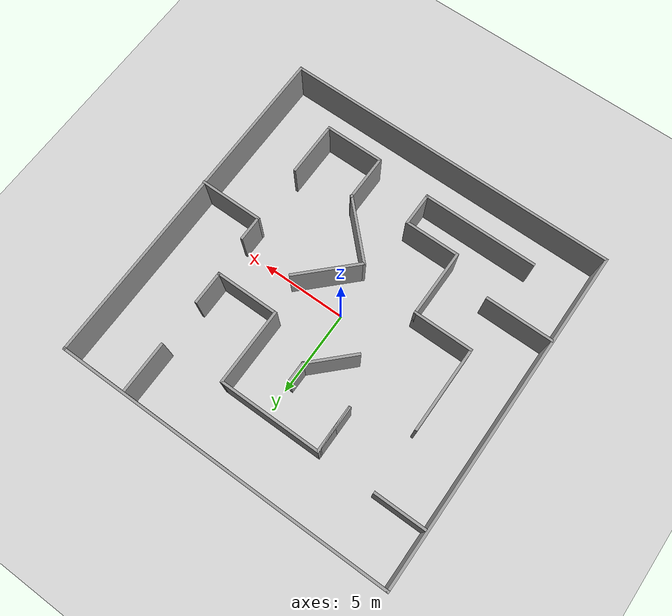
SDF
<sdf version="1.7">
 <world name="default">
  <physics type="ode">
   <ode>
    <solver>
     <type>quick</type>
     <iters>10</iters>
     <sor>1.3</sor>
     <use_dynamic_moi_rescaling>0</use_dynamic_moi_rescaling>
    </solver>
    <constraints>
     <cfm>0</cfm>
     <erp>0.2</erp>
     <contact_max_correcting_vel>100</contact_max_correcting_vel>
     <contact_surface_layer>0.001</contact_surface_layer>
    </constraints>
   </ode>
   <max_step_size>0.004</max_step_size>
   <real_time_factor>1</real_time_factor>
   <real_time_update_rate>250</real_time_update_rate>
  </physics>
  <light name="sun" type="directional">
   <cast_shadows>0</cast_shadows>
   <pose>0 0 100 0 -0 0</pose>
   <diffuse>0.8 0.8 0.8 1</diffuse>
   <specular>0.9 0.9 0.9 1</specular>
   <attenuation>
    <range>1000</range>
    <constant>0.9</constant>
    <linear>0.01</linear>
    <quadratic>0.001</quadratic>
   </attenuation>
   <direction>0.2 0.2 -0.9</direction>
   <spot><inner_angle>0</inner_angle><outer_angle>0</outer_angle><falloff>0</falloff></spot>
  </light>
  <model name="ground_plane">
   <static>1</static>
   <link name="link">
    <collision name="collision">
     <geometry><plane><normal>0 0 1</normal><size>100 100</size></plane></geometry>
     <surface><friction><ode><mu>100</mu><mu2>50</mu2></ode></friction></surface>
    </collision>
    <visual name="visual">
     <cast_shadows>0</cast_shadows>
     <geometry><plane><normal>0 0 1</normal><size>100 100</size></plane></geometry>
     <material>
      <script><uri>file://media/materials/scripts/gazebo.material</uri><name>Gazebo/Grey</name></script>
     </material>
    </visual>
   </link>
  </model>
  <gravity>0 0 -9.8066</gravity>
  <magnetic_field>6e-06 2.3e-05 -4.2e-05</magnetic_field>
  <atmosphere type="adiabatic"/>
  <scene><ambient>0.4 0.4 0.4 1</ambient><background>0.7 0.7 0.7 1</background><shadows>1</shadows></scene>
  <spherical_coordinates>
   <surface_model>EARTH_WGS84</surface_model>
   <latitude_deg>0</latitude_deg>
   <longitude_deg>0</longitude_deg>
   <elevation>0</elevation>
   <heading_deg>0</heading_deg>
  </spherical_coordinates>
  <model name="7.13.14.30">
   <pose>0.024632 0.045 0 0 -0 0</pose>
   <link name="Wall_0">
    <collision name="Wall_0_Collision">
     <geometry><box><size>19.75 0.15 2.5</size></box></geometry>
     <pose>0 0 1.25 0 -0 0</pose>
    </collision>
    <visual name="Wall_0_Visual">
     <pose>0 0 1.25 0 -0 0</pose>
     <geometry><box><size>19.75 0.15 2.5</size></box></geometry>
     <material>
      <script><uri>file://media/materials/scripts/gazebo.material</uri><name>Gazebo/Grey</name></script>
      <ambient>1 1 1 1</ambient>
     </material>
     <meta><layer>0</layer></meta>
    </visual>
    <pose>-0.014632 -9.925 0 0 -0 0</pose>
   </link>
   <link name="Wall_11">
    <collision name="Wall_11_Collision">
     <geometry><box><size>2.75 0.15 2.5</size></box></geometry>
     <pose>0 0 1.25 0 -0 0</pose>
    </collision>
    <visual name="Wall_11_Visual">
     <pose>0 0 1.25 0 -0 0</pose>
     <geometry><box><size>2.75 0.15 2.5</size></box></geometry>
     <material>
      <script><uri>file://media/materials/scripts/gazebo.material</uri><name>Gazebo/Grey</name></script>
      <ambient>1 1 1 1</ambient>
     </material>
     <meta><layer>0</layer></meta>
    </visual>
    <pose>-3.47586 5.36469 0 0 -0 -1.5708</pose>
   </link>
   <link name="Wall_12">
    <collision name="Wall_12_Collision">
     <geometry><box><size>2.5 0.15 2.5</size></box></geometry>
     <pose>0 0 1.25 0 -0 0</pose>
    </collision>
    <visual name="Wall_12_Visual">
     <pose>0 0 1.25 0 -0 0</pose>
     <geometry><box><size>2.5 0.15 2.5</size></box></geometry>
     <material>
      <script><uri>file://media/materials/scripts/gazebo.material</uri><name>Gazebo/Grey</name></script>
      <ambient>1 1 1 1</ambient>
     </material>
     <meta><layer>0</layer></meta>
    </visual>
    <pose>-3.47586 5.23969 0 0 -0 1.5708</pose>
   </link>
   <link name="Wall_15">
    <collision name="Wall_15_Collision">
     <geometry><box><size>6 0.15 2.5</size></box></geometry>
     <pose>0 0 1.25 0 -0 0</pose>
    </collision>
    <visual name="Wall_15_Visual">
     <pose>0 0 1.25 0 -0 0</pose>
     <geometry><box><size>6 0.15 2.5</size></box></geometry>
     <material>
      <script><uri>file://media/materials/scripts/gazebo.material</uri><name>Gazebo/Grey</name></script>
      <ambient>1 1 1 1</ambient>
     </material>
     <meta><layer>0</layer></meta>
    </visual>
    <pose>-0.550858 6.66469 0 0 -0 0</pose>
   </link>
   <link name="Wall_16">
    <collision name="Wall_16_Collision">
     <geometry><box><size>4.5 0.15 2.5</size></box></geometry>
     <pose>0 0 1.25 0 -0 0</pose>
    </collision>
    <visual name="Wall_16_Visual">
     <pose>0 0 1.25 0 -0 0</pose>
     <geometry><box><size>4.5 0.15 2.5</size></box></geometry>
     <material>
      <script><uri>file://media/materials/scripts/gazebo.material</uri><name>Gazebo/Grey</name></script>
      <ambient>1 1 1 1</ambient>
     </material>
     <meta><layer>0</layer></meta>
    </visual>
    <pose>2.37414 4.48969 0 0 -0 -1.5708</pose>
   </link>
   <link name="Wall_17">
    <collision name="Wall_17_Collision">
     <geometry><box><size>3.75 0.15 2.5</size></box></geometry>
     <pose>0 0 1.25 0 -0 0</pose>
    </collision>
    <visual name="Wall_17_Visual">
     <pose>0 0 1.25 0 -0 0</pose>
     <geometry><box><size>3.75 0.15 2.5</size></box></geometry>
     <material>
      <script><uri>file://media/materials/scripts/gazebo.material</uri><name>Gazebo/Grey</name></script>
      <ambient>1 1 1 1</ambient>
     </material>
     <meta><layer>0</layer></meta>
    </visual>
    <pose>4.17414 2.31469 0 0 -0 0</pose>
   </link>
   <link name="Wall_18">
    <collision name="Wall_18_Collision">
     <geometry><box><size>2 0.15 2.5</size></box></geometry>
     <pose>0 0 1.25 0 -0 0</pose>
    </collision>
    <visual name="Wall_18_Visual">
     <pose>0 0 1.25 0 -0 0</pose>
     <geometry><box><size>2 0.15 2.5</size></box></geometry>
     <material>
      <script><uri>file://media/materials/scripts/gazebo.material</uri><name>Gazebo/Grey</name></script>
      <ambient>1 1 1 1</ambient>
     </material>
     <meta><layer>0</layer></meta>
    </visual>
    <pose>5.97414 3.23969 0 0 -0 1.5708</pose>
   </link>
   <link name="Wall_2">
    <collision name="Wall_2_Collision">
     <geometry><box><size>20 0.15 2.5</size></box></geometry>
     <pose>0 0 1.25 0 -0 0</pose>
    </collision>
    <visual name="Wall_2_Visual">
     <pose>0 0 1.25 0 -0 0</pose>
     <geometry><box><size>20 0.15 2.5</size></box></geometry>
     <material>
      <script><uri>file://media/materials/scripts/gazebo.material</uri><name>Gazebo/Grey</name></script>
      <ambient>1 1 1 1</ambient>
     </material>
     <meta><layer>0</layer></meta>
    </visual>
    <pose>-9.81463 -0 0 0 -0 1.5708</pose>
   </link>
   <link name="Wall_20">
    <collision name="Wall_20_Collision">
     <geometry><box><size>5 0.15 2.5</size></box></geometry>
     <pose>0 0 1.25 0 -0 0</pose>
    </collision>
    <visual name="Wall_20_Visual">
     <pose>0 0 1.25 0 -0 0</pose>
     <geometry><box><size>5 0.15 2.5</size></box></geometry>
     <material>
      <script><uri>file://media/materials/scripts/gazebo.material</uri><name>Gazebo/Grey</name></script>
      <ambient>1 1 1 1</ambient>
     </material>
     <meta><layer>0</layer></meta>
    </visual>
    <pose>-6.73468 0.596785 0 0 -0 -1.5708</pose>
   </link>
   <link name="Wall_21">
    <collision name="Wall_21_Collision">
     <geometry><box><size>3.5 0.15 2.5</size></box></geometry>
     <pose>0 0 1.25 0 -0 0</pose>
    </collision>
    <visual name="Wall_21_Visual">
     <pose>0 0 1.25 0 -0 0</pose>
     <geometry><box><size>3.5 0.15 2.5</size></box></geometry>
     <material>
      <script><uri>file://media/materials/scripts/gazebo.material</uri><name>Gazebo/Grey</name></script>
      <ambient>1 1 1 1</ambient>
     </material>
     <meta><layer>0</layer></meta>
    </visual>
    <pose>-5.05968 -1.82821 0 0 -0 0</pose>
   </link>
   <link name="Wall_22">
    <collision name="Wall_22_Collision">
     <geometry><box><size>4 0.15 2.5</size></box></geometry>
     <pose>0 0 1.25 0 -0 0</pose>
    </collision>
    <visual name="Wall_22_Visual">
     <pose>0 0 1.25 0 -0 0</pose>
     <geometry><box><size>4 0.15 2.5</size></box></geometry>
     <material>
      <script><uri>file://media/materials/scripts/gazebo.material</uri><name>Gazebo/Grey</name></script>
      <ambient>1 1 1 1</ambient>
     </material>
     <meta><layer>0</layer></meta>
    </visual>
    <pose>-3.38468 -3.75321 0 0 -0 -1.5708</pose>
   </link>
   <link name="Wall_23">
    <collision name="Wall_23_Collision">
     <geometry><box><size>3.25 0.15 2.5</size></box></geometry>
     <pose>0 0 1.25 0 -0 0</pose>
    </collision>
    <visual name="Wall_23_Visual">
     <pose>0 0 1.25 0 -0 0</pose>
     <geometry><box><size>3.25 0.15 2.5</size></box></geometry>
     <material>
      <script><uri>file://media/materials/scripts/gazebo.material</uri><name>Gazebo/Grey</name></script>
      <ambient>1 1 1 1</ambient>
     </material>
     <meta><layer>0</layer></meta>
    </visual>
    <pose>-1.83468 -5.67821 0 0 -0 0</pose>
   </link>
   <link name="Wall_24">
    <collision name="Wall_24_Collision">
     <geometry><box><size>2 0.15 2.5</size></box></geometry>
     <pose>0 0 1.25 0 -0 0</pose>
    </collision>
    <visual name="Wall_24_Visual">
     <pose>0 0 1.25 0 -0 0</pose>
     <geometry><box><size>2 0.15 2.5</size></box></geometry>
     <material>
      <script><uri>file://media/materials/scripts/gazebo.material</uri><name>Gazebo/Grey</name></script>
      <ambient>1 1 1 1</ambient>
     </material>
     <meta><layer>0</layer></meta>
    </visual>
    <pose>-0.28468 -6.60321 0 0 -0 -1.5708</pose>
   </link>
   <link name="Wall_25">
    <collision name="Wall_25_Collision">
     <geometry><box><size>6.75 0.15 2.5</size></box></geometry>
     <pose>0 0 1.25 0 -0 0</pose>
    </collision>
    <visual name="Wall_25_Visual">
     <pose>0 0 1.25 0 -0 0</pose>
     <geometry><box><size>6.75 0.15 2.5</size></box></geometry>
     <material>
      <script><uri>file://media/materials/scripts/gazebo.material</uri><name>Gazebo/Grey</name></script>
      <ambient>1 1 1 1</ambient>
     </material>
     <meta><layer>0</layer></meta>
    </visual>
    <pose>-3.58468 -7.52822 0 0 -0 3.14159</pose>
   </link>
   <link name="Wall_27">
    <collision name="Wall_27_Collision">
     <geometry><box><size>4 0.15 2.5</size></box></geometry>
     <pose>0 0 1.25 0 -0 0</pose>
    </collision>
    <visual name="Wall_27_Visual">
     <pose>0 0 1.25 0 -0 0</pose>
     <geometry><box><size>4 0.15 2.5</size></box></geometry>
     <material>
      <script><uri>file://media/materials/scripts/gazebo.material</uri><name>Gazebo/Grey</name></script>
      <ambient>1 1 1 1</ambient>
     </material>
     <meta><layer>0</layer></meta>
    </visual>
    <pose>-7.8687 -4.59518 0 0 -0 0</pose>
   </link>
   <link name="Wall_3">
    <collision name="Wall_3_Collision">
     <geometry><box><size>19.75 0.15 2.5</size></box></geometry>
     <pose>0 0 1.25 0 -0 0</pose>
    </collision>
    <visual name="Wall_3_Visual">
     <pose>0 0 1.25 0 -0 0</pose>
     <geometry><box><size>19.75 0.15 2.5</size></box></geometry>
     <material>
      <script><uri>file://media/materials/scripts/gazebo.material</uri><name>Gazebo/Grey</name></script>
      <ambient>1 1 1 1</ambient>
     </material>
     <meta><layer>0</layer></meta>
    </visual>
    <pose>-0.014632 9.925 0 0 -0 0</pose>
   </link>
   <link name="Wall_30">
    <collision name="Wall_30_Collision">
     <geometry><box><size>3 0.15 2.5</size></box></geometry>
     <pose>0 0 1.25 0 -0 0</pose>
    </collision>
    <visual name="Wall_30_Visual">
     <pose>0 0 1.25 0 -0 0</pose>
     <geometry><box><size>3 0.15 2.5</size></box></geometry>
     <material>
      <script><uri>file://media/materials/scripts/gazebo.material</uri><name>Gazebo/Grey</name></script>
      <ambient>1 1 1 1</ambient>
     </material>
     <meta><layer>0</layer></meta>
    </visual>
    <pose>-1.32206 2.59167 0 0 -0 0.785398</pose>
   </link>
   <link name="Wall_31">
    <collision name="Wall_31_Collision">
     <geometry><box><size>1.25 0.15 2.5</size></box></geometry>
     <pose>0 0 1.25 0 -0 0</pose>
    </collision>
    <visual name="Wall_31_Visual">
     <pose>0 0 1.25 0 -0 0</pose>
     <geometry><box><size>1.25 0.15 2.5</size></box></geometry>
     <material>
      <script><uri>file://media/materials/scripts/gazebo.material</uri><name>Gazebo/Grey</name></script>
      <ambient>1 1 1 1</ambient>
     </material>
     <meta><layer>0</layer></meta>
    </visual>
    <pose>-0.314433 4.1493 0 0 -0 1.5708</pose>
   </link>
   <link name="Wall_34">
    <collision name="Wall_34_Collision">
     <geometry><box><size>4 0.15 2.5</size></box></geometry>
     <pose>0 0 1.25 0 -0 0</pose>
    </collision>
    <visual name="Wall_34_Visual">
     <pose>0 0 1.25 0 -0 0</pose>
     <geometry><box><size>4 0.15 2.5</size></box></geometry>
     <material>
      <script><uri>file://media/materials/scripts/gazebo.material</uri><name>Gazebo/Grey</name></script>
      <ambient>1 1 1 1</ambient>
     </material>
     <meta><layer>0</layer></meta>
    </visual>
    <pose>1.60124 -1.12311 0 0 -0 -2.35619</pose>
   </link>
   <link name="Wall_35">
    <collision name="Wall_35_Collision">
     <geometry><box><size>4 0.15 2.5</size></box></geometry>
     <pose>0 0 1.25 0 -0 0</pose>
    </collision>
    <visual name="Wall_35_Visual">
     <pose>0 0 1.25 0 -0 0</pose>
     <geometry><box><size>4 0.15 2.5</size></box></geometry>
     <material>
      <script><uri>file://media/materials/scripts/gazebo.material</uri><name>Gazebo/Grey</name></script>
      <ambient>1 1 1 1</ambient>
     </material>
     <meta><layer>0</layer></meta>
    </visual>
    <pose>1.60124 -3.84547 0 0 -0 -0.785398</pose>
   </link>
   <link name="Wall_36">
    <collision name="Wall_36_Collision">
     <geometry><box><size>2.75 0.15 2.5</size></box></geometry>
     <pose>0 0 1.25 0 -0 0</pose>
    </collision>
    <visual name="Wall_36_Visual">
     <pose>0 0 1.25 0 -0 0</pose>
     <geometry><box><size>2.75 0.15 2.5</size></box></geometry>
     <material>
      <script><uri>file://media/materials/scripts/gazebo.material</uri><name>Gazebo/Grey</name></script>
      <ambient>1 1 1 1</ambient>
     </material>
     <meta><layer>0</layer></meta>
    </visual>
    <pose>2.96242 -6.50665 0 0 -0 -1.5708</pose>
   </link>
   <link name="Wall_37">
    <collision name="Wall_37_Collision">
     <geometry><box><size>3.5 0.15 2.5</size></box></geometry>
     <pose>0 0 1.25 0 -0 0</pose>
    </collision>
    <visual name="Wall_37_Visual">
     <pose>0 0 1.25 0 -0 0</pose>
     <geometry><box><size>3.5 0.15 2.5</size></box></geometry>
     <material>
      <script><uri>file://media/materials/scripts/gazebo.material</uri><name>Gazebo/Grey</name></script>
      <ambient>1 1 1 1</ambient>
     </material>
     <meta><layer>0</layer></meta>
    </visual>
    <pose>4.63742 -7.80665 0 0 -0 0</pose>
   </link>
   <link name="Wall_38">
    <collision name="Wall_38_Collision">
     <geometry><box><size>3.25 0.15 2.5</size></box></geometry>
     <pose>0 0 1.25 0 -0 0</pose>
    </collision>
    <visual name="Wall_38_Visual">
     <pose>0 0 1.25 0 -0 0</pose>
     <geometry><box><size>3.25 0.15 2.5</size></box></geometry>
     <material>
      <script><uri>file://media/materials/scripts/gazebo.material</uri><name>Gazebo/Grey</name></script>
      <ambient>1 1 1 1</ambient>
     </material>
     <meta><layer>0</layer></meta>
    </visual>
    <pose>6.31242 -6.25665 0 0 -0 1.5708</pose>
   </link>
   <link name="Wall_4">
    <collision name="Wall_4_Collision">
     <geometry><box><size>20 0.15 2.5</size></box></geometry>
     <pose>0 0 1.25 0 -0 0</pose>
    </collision>
    <visual name="Wall_4_Visual">
     <pose>0 0 1.25 0 -0 0</pose>
     <geometry><box><size>20 0.15 2.5</size></box></geometry>
     <material>
      <script><uri>file://media/materials/scripts/gazebo.material</uri><name>Gazebo/Grey</name></script>
      <ambient>1 1 1 1</ambient>
     </material>
     <meta><layer>0</layer></meta>
    </visual>
    <pose>9.78537 -0 0 0 -0 -1.5708</pose>
   </link>
   <link name="Wall_40">
    <collision name="Wall_40_Collision">
     <geometry><box><size>3.75 0.15 2.5</size></box></geometry>
     <pose>0 0 1.25 0 -0 0</pose>
    </collision>
    <visual name="Wall_40_Visual">
     <pose>0 0 1.25 0 -0 0</pose>
     <geometry><box><size>3.75 0.15 2.5</size></box></geometry>
     <material>
      <script><uri>file://media/materials/scripts/gazebo.material</uri><name>Gazebo/Grey</name></script>
      <ambient>1 1 1 1</ambient>
     </material>
     <meta><layer>0</layer></meta>
    </visual>
    <pose>8.01463 -1.29144 0 0 -0 3.14159</pose>
   </link>
   <link name="Wall_41">
    <collision name="Wall_41_Collision">
     <geometry><box><size>1.5 0.15 2.5</size></box></geometry>
     <pose>0 0 1.25 0 -0 0</pose>
    </collision>
    <visual name="Wall_41_Visual">
     <pose>0 0 1.25 0 -0 0</pose>
     <geometry><box><size>1.5 0.15 2.5</size></box></geometry>
     <material>
      <script><uri>file://media/materials/scripts/gazebo.material</uri><name>Gazebo/Grey</name></script>
      <ambient>1 1 1 1</ambient>
     </material>
     <meta><layer>0</layer></meta>
    </visual>
    <pose>6.21463 -0.616437 0 0 -0 1.5708</pose>
   </link>
   <link name="Wall_7">
    <collision name="Wall_7_Collision">
     <geometry><box><size>3 0.15 2.5</size></box></geometry>
     <pose>0 0 1.25 0 -0 0</pose>
    </collision>
    <visual name="Wall_7_Visual">
     <pose>0 0 1.25 0 -0 0</pose>
     <geometry><box><size>3 0.15 2.5</size></box></geometry>
     <material>
      <script><uri>file://media/materials/scripts/gazebo.material</uri><name>Gazebo/Grey</name></script>
      <ambient>1 1 1 1</ambient>
     </material>
     <meta><layer>0</layer></meta>
    </visual>
    <pose>5.98634 8.35989 0 0 -0 -1.5708</pose>
   </link>
   <link name="Wall_9">
    <collision name="Wall_9_Collision">
     <geometry><box><size>3 0.15 2.5</size></box></geometry>
     <pose>0 0 1.25 0 -0 0</pose>
    </collision>
    <visual name="Wall_9_Visual">
     <pose>0 0 1.25 0 -0 0</pose>
     <geometry><box><size>3 0.15 2.5</size></box></geometry>
     <material>
      <script><uri>file://media/materials/scripts/gazebo.material</uri><name>Gazebo/Grey</name></script>
      <ambient>1 1 1 1</ambient>
     </material>
     <meta><layer>0</layer></meta>
    </visual>
    <pose>-8.25086 6.66469 0 0 -0 0</pose>
   </link>
   <static>1</static>
  </model>
 </world>
</sdf>
